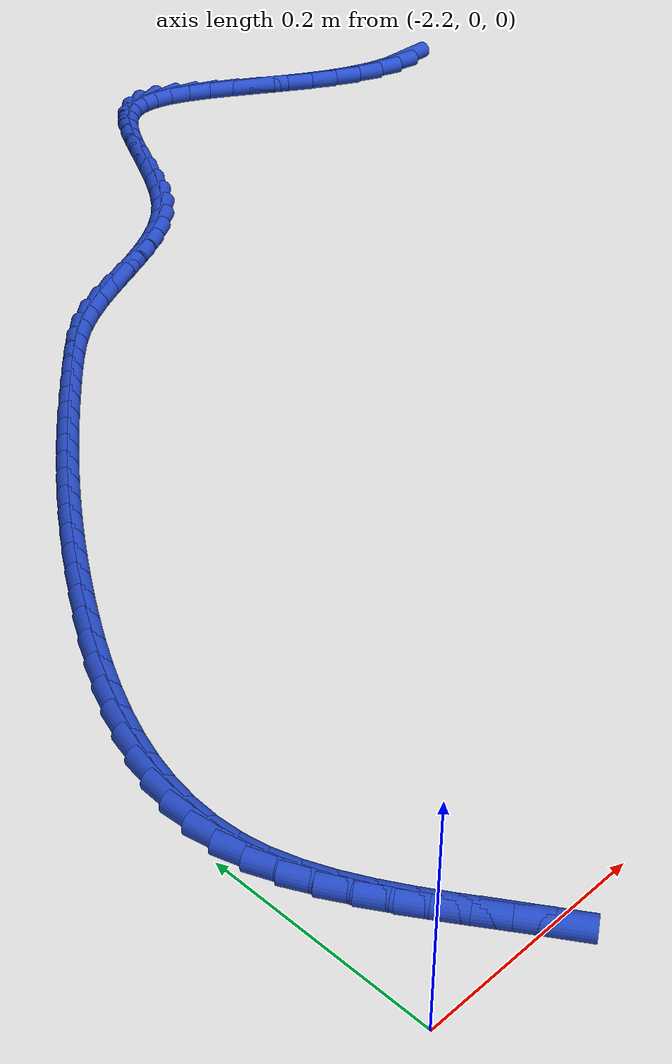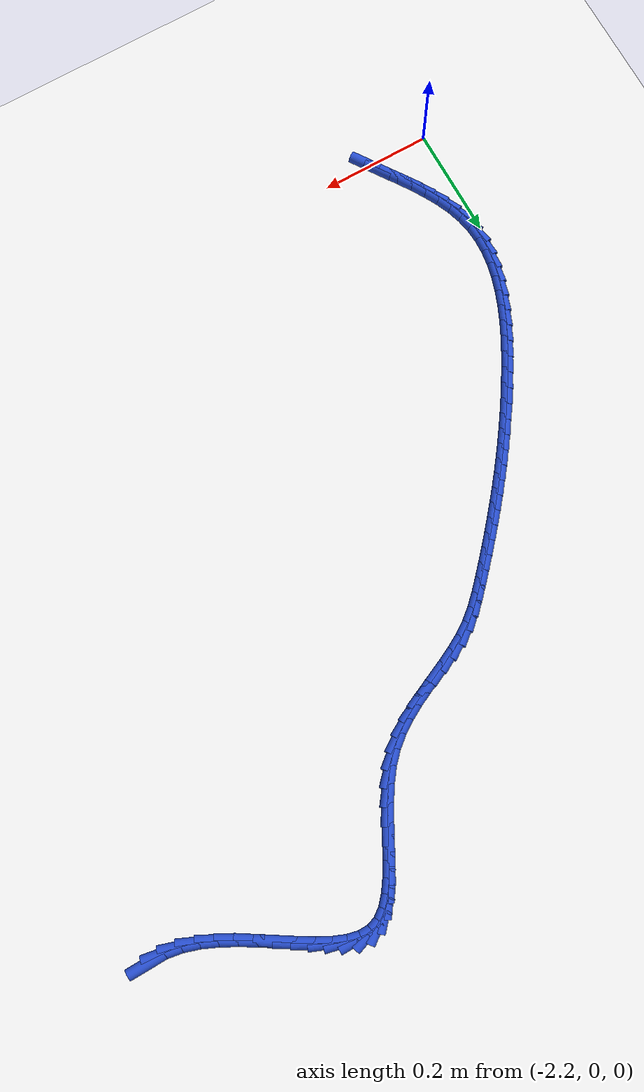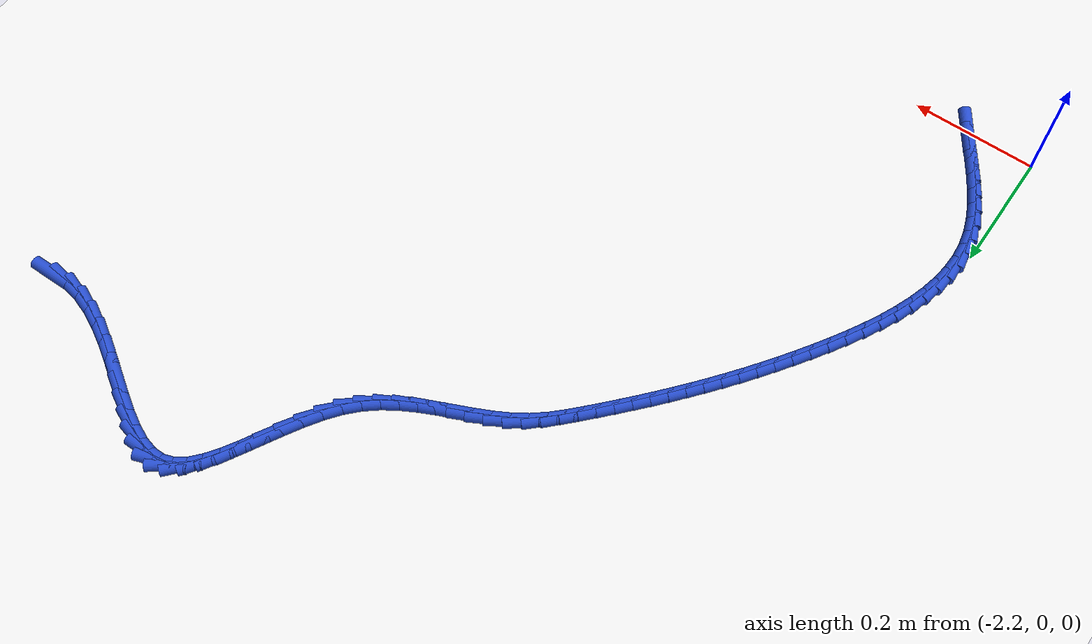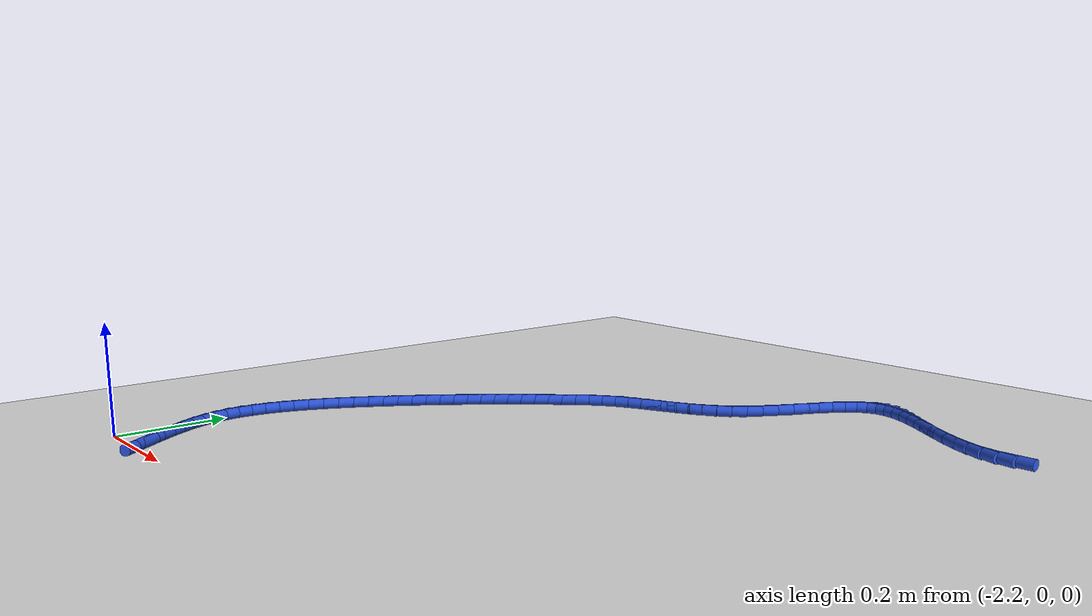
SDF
<sdf version="1.6">
 <world name="default">
  <model name="ground_plane">
   <static>1</static>
   <link name="link">
    <collision name="collision">
     <geometry><plane><normal>0 0 1</normal><size>100 100</size></plane></geometry>
     <surface><friction><ode><mu>100</mu><mu2>50</mu2></ode></friction></surface>
    </collision>
    <visual name="visual">
     <cast_shadows>0</cast_shadows>
     <geometry><plane><normal>0 0 1</normal><size>100 100</size></plane></geometry>
     <material>
      <script><uri>file://media/materials/scripts/gazebo.material</uri><name>Gazebo/WhiteGlow</name></script>
     </material>
    </visual>
   </link>
  </model>
  <model name="line">
   <link name="link_66">
    <pose>-1.1069341901536212 1.022419946528383 0.01 0 1.57 0.02020815254820684</pose>
    <collision name="collision">
     <geometry><cylinder><radius>0.01</radius><length>0.08</length></cylinder></geometry>
    </collision>
    <visual name="visual">
     <material>
      <script><name>Gazebo/Blue</name><uri>file://media/materials/scripts/gazebo.material</uri></script>
     </material>
     <geometry><cylinder><radius>0.01</radius><length>0.08</length></cylinder></geometry>
    </visual>
   </link>
   <link name="link_67">
    <pose>-1.1344769636904963 1.0218632821821856 0.01 0 1.57 -0.16537096222450542</pose>
    <collision name="collision">
     <geometry><cylinder><radius>0.01</radius><length>0.08</length></cylinder></geometry>
    </collision>
    <visual name="visual">
     <material>
      <script><name>Gazebo/Blue</name><uri>file://media/materials/scripts/gazebo.material</uri></script>
     </material>
     <geometry><cylinder><radius>0.01</radius><length>0.08</length></cylinder></geometry>
    </visual>
   </link>
   <link name="link_68">
    <pose>-1.1621824530618348 1.0264871935578272 0.01 0 1.57 -0.3096220203757581</pose>
    <collision name="collision">
     <geometry><cylinder><radius>0.01</radius><length>0.08</length></cylinder></geometry>
    </collision>
    <visual name="visual">
     <material>
      <script><name>Gazebo/Blue</name><uri>file://media/materials/scripts/gazebo.material</uri></script>
     </material>
     <geometry><cylinder><radius>0.01</radius><length>0.08</length></cylinder></geometry>
    </visual>
   </link>
   <link name="link_69">
    <pose>-1.189899701421498 1.0353542404190064 0.01 0 1.57 -0.4156727398980598</pose>
    <collision name="collision">
     <geometry><cylinder><radius>0.01</radius><length>0.08</length></cylinder></geometry>
    </collision>
    <visual name="visual">
     <material>
      <script><name>Gazebo/Blue</name><uri>file://media/materials/scripts/gazebo.material</uri></script>
     </material>
     <geometry><cylinder><radius>0.01</radius><length>0.08</length></cylinder></geometry>
    </visual>
   </link>
   <link name="link_70">
    <pose>-1.2174777518388087 1.0475269792929782 0.01 0 1.57 -0.48959899951528796</pose>
    <collision name="collision">
     <geometry><cylinder><radius>0.01</radius><length>0.08</length></cylinder></geometry>
    </collision>
    <visual name="visual">
     <material>
      <script><name>Gazebo/Blue</name><uri>file://media/materials/scripts/gazebo.material</uri></script>
     </material>
     <geometry><cylinder><radius>0.01</radius><length>0.08</length></cylinder></geometry>
    </visual>
   </link>
   <link name="link_71">
    <pose>-1.2447656473830915 1.062067966706999 0.01 0 1.57 -0.5366786917627356</pose>
    <collision name="collision">
     <geometry><cylinder><radius>0.01</radius><length>0.08</length></cylinder></geometry>
    </collision>
    <visual name="visual">
     <material>
      <script><name>Gazebo/Blue</name><uri>file://media/materials/scripts/gazebo.material</uri></script>
     </material>
     <geometry><cylinder><radius>0.01</radius><length>0.08</length></cylinder></geometry>
    </visual>
   </link>
   <link name="link_72">
    <pose>-1.2716124311236696 1.078039759188326 0.01 0 1.57 -0.5601304819937649</pose>
    <collision name="collision">
     <geometry><cylinder><radius>0.01</radius><length>0.08</length></cylinder></geometry>
    </collision>
    <visual name="visual">
     <material>
      <script><name>Gazebo/Blue</name><uri>file://media/materials/scripts/gazebo.material</uri></script>
     </material>
     <geometry><cylinder><radius>0.01</radius><length>0.08</length></cylinder></geometry>
    </visual>
   </link>
   <link name="link_73">
    <pose>-1.2978671461298668 1.0945049132642144 0.01 0 1.57 -0.5607461568363896</pose>
    <collision name="collision">
     <geometry><cylinder><radius>0.01</radius><length>0.08</length></cylinder></geometry>
    </collision>
    <visual name="visual">
     <material>
      <script><name>Gazebo/Blue</name><uri>file://media/materials/scripts/gazebo.material</uri></script>
     </material>
     <geometry><cylinder><radius>0.01</radius><length>0.08</length></cylinder></geometry>
    </visual>
   </link>
   <link name="link_74">
    <pose>-1.323378835471006 1.110525985461921 0.01 0 1.57 -0.5364952219221905</pose>
    <collision name="collision">
     <geometry><cylinder><radius>0.01</radius><length>0.08</length></cylinder></geometry>
    </collision>
    <visual name="visual">
     <material>
      <script><name>Gazebo/Blue</name><uri>file://media/materials/scripts/gazebo.material</uri></script>
     </material>
     <geometry><cylinder><radius>0.01</radius><length>0.08</length></cylinder></geometry>
    </visual>
   </link>
   <link name="link_75">
    <pose>-1.347996542216412 1.1251655323087018 0.01 0 1.57 -0.4816120235274585</pose>
    <collision name="collision">
     <geometry><cylinder><radius>0.01</radius><length>0.08</length></cylinder></geometry>
    </collision>
    <visual name="visual">
     <material>
      <script><name>Gazebo/Blue</name><uri>file://media/materials/scripts/gazebo.material</uri></script>
     </material>
     <geometry><cylinder><radius>0.01</radius><length>0.08</length></cylinder></geometry>
    </visual>
   </link>
   <link name="link_76">
    <pose>-1.3715693094354071 1.137486110331813 0.01 0 1.57 -0.3848681323692567</pose>
    <collision name="collision">
     <geometry><cylinder><radius>0.01</radius><length>0.08</length></cylinder></geometry>
    </collision>
    <visual name="visual">
     <material>
      <script><name>Gazebo/Blue</name><uri>file://media/materials/scripts/gazebo.material</uri></script>
     </material>
     <geometry><cylinder><radius>0.01</radius><length>0.08</length></cylinder></geometry>
    </visual>
   </link>
   <link name="link_77">
    <pose>-1.3939461801973159 1.1465502760585111 0.01 0 1.57 -0.2275765438234378</pose>
    <collision name="collision">
     <geometry><cylinder><radius>0.01</radius><length>0.08</length></cylinder></geometry>
    </collision>
    <visual name="visual">
     <material>
      <script><name>Gazebo/Blue</name><uri>file://media/materials/scripts/gazebo.material</uri></script>
     </material>
     <geometry><cylinder><radius>0.01</radius><length>0.08</length></cylinder></geometry>
    </visual>
   </link>
   <link name="link_78">
    <pose>-1.4149761975714608 1.151420586016052 0.01 0 1.57 0.013361201459706887</pose>
    <collision name="collision">
     <geometry><cylinder><radius>0.01</radius><length>0.08</length></cylinder></geometry>
    </collision>
    <visual name="visual">
     <material>
      <script><name>Gazebo/Blue</name><uri>file://media/materials/scripts/gazebo.material</uri></script>
     </material>
     <geometry><cylinder><radius>0.01</radius><length>0.08</length></cylinder></geometry>
    </visual>
   </link>
   <link name="link_79">
    <pose>-1.434508404627167 1.1511595967316925 0.01 0 1.57 0.3373347254665268</pose>
    <collision name="collision">
     <geometry><cylinder><radius>0.01</radius><length>0.08</length></cylinder></geometry>
    </collision>
    <visual name="visual">
     <material>
      <script><name>Gazebo/Blue</name><uri>file://media/materials/scripts/gazebo.material</uri></script>
     </material>
     <geometry><cylinder><radius>0.01</radius><length>0.08</length></cylinder></geometry>
    </visual>
   </link>
   <link name="link_80">
    <pose>-1.4524058884178155 1.144882216876278 0.01 0 1.57 0.6396455511615639</pose>
    <collision name="collision">
     <geometry><cylinder><radius>0.01</radius><length>0.08</length></cylinder></geometry>
    </collision>
    <visual name="visual">
     <material>
      <script><name>Gazebo/Blue</name><uri>file://media/materials/scripts/gazebo.material</uri></script>
     </material>
     <geometry><cylinder><radius>0.01</radius><length>0.08</length></cylinder></geometry>
    </visual>
   </link>
   <link name="link_81">
    <pose>-1.4687959169887639 1.1326881498318513 0.01 0 1.57 0.8436905700539282</pose>
    <collision name="collision">
     <geometry><cylinder><radius>0.01</radius><length>0.08</length></cylinder></geometry>
    </collision>
    <visual name="visual">
     <material>
      <script><name>Gazebo/Blue</name><uri>file://media/materials/scripts/gazebo.material</uri></script>
     </material>
     <geometry><cylinder><radius>0.01</radius><length>0.08</length></cylinder></geometry>
    </visual>
   </link>
   <link name="link_82">
    <pose>-1.484040879164767 1.1155535651422157 0.01 0 1.57 0.968960059297003</pose>
    <collision name="collision">
     <geometry><cylinder><radius>0.01</radius><length>0.08</length></cylinder></geometry>
    </collision>
    <visual name="visual">
     <material>
      <script><name>Gazebo/Blue</name><uri>file://media/materials/scripts/gazebo.material</uri></script>
     </material>
     <geometry><cylinder><radius>0.01</radius><length>0.08</length></cylinder></geometry>
    </visual>
   </link>
   <link name="link_83">
    <pose>-1.4985113709580045 1.0944852265082632 0.01 0 1.57 1.0405684530799015</pose>
    <collision name="collision">
     <geometry><cylinder><radius>0.01</radius><length>0.08</length></cylinder></geometry>
    </collision>
    <visual name="visual">
     <material>
      <script><name>Gazebo/Blue</name><uri>file://media/materials/scripts/gazebo.material</uri></script>
     </material>
     <geometry><cylinder><radius>0.01</radius><length>0.08</length></cylinder></geometry>
    </visual>
   </link>
   <link name="link_84">
    <pose>-1.5125779883806556 1.0704898976308863 0.01 0 1.57 1.0745004779913812</pose>
    <collision name="collision">
     <geometry><cylinder><radius>0.01</radius><length>0.08</length></cylinder></geometry>
    </collision>
    <visual name="visual">
     <material>
      <script><name>Gazebo/Blue</name><uri>file://media/materials/scripts/gazebo.material</uri></script>
     </material>
     <geometry><cylinder><radius>0.01</radius><length>0.08</length></cylinder></geometry>
    </visual>
   </link>
   <link name="link_85">
    <pose>-1.5266113274448994 1.044574342210978 0.01 0 1.57 1.0790459917711814</pose>
    <collision name="collision">
     <geometry><cylinder><radius>0.01</radius><length>0.08</length></cylinder></geometry>
    </collision>
    <visual name="visual">
     <material>
      <script><name>Gazebo/Blue</name><uri>file://media/materials/scripts/gazebo.material</uri></script>
     </material>
     <geometry><cylinder><radius>0.01</radius><length>0.08</length></cylinder></geometry>
    </visual>
   </link>
   <link name="link_86">
    <pose>-1.5409819841629153 1.01774532394943 0.01 0 1.57 1.057278750456787</pose>
    <collision name="collision">
     <geometry><cylinder><radius>0.01</radius><length>0.08</length></cylinder></geometry>
    </collision>
    <visual name="visual">
     <material>
      <script><name>Gazebo/Blue</name><uri>file://media/materials/scripts/gazebo.material</uri></script>
     </material>
     <geometry><cylinder><radius>0.01</radius><length>0.08</length></cylinder></geometry>
    </visual>
   </link>
   <link name="link_87">
    <pose>-1.5560605545468824 0.991009606547135 0.01 0 1.57 1.0084247764468381</pose>
    <collision name="collision">
     <geometry><cylinder><radius>0.01</radius><length>0.08</length></cylinder></geometry>
    </collision>
    <visual name="visual">
     <material>
      <script><name>Gazebo/Blue</name><uri>file://media/materials/scripts/gazebo.material</uri></script>
     </material>
     <geometry><cylinder><radius>0.01</radius><length>0.08</length></cylinder></geometry>
    </visual>
   </link>
   <link name="link_88">
    <pose>-1.5722176346089802 0.9653739537049851 0.01 0 1.57 0.9283959219050918</pose>
    <collision name="collision">
     <geometry><cylinder><radius>0.01</radius><length>0.08</length></cylinder></geometry>
    </collision>
    <visual name="visual">
     <material>
      <script><name>Gazebo/Blue</name><uri>file://media/materials/scripts/gazebo.material</uri></script>
     </material>
     <geometry><cylinder><radius>0.01</radius><length>0.08</length></cylinder></geometry>
    </visual>
   </link>
   <link name="link_89">
    <pose>-1.5898238203613877 0.9418451291238729 0.01 0 1.57 0.8127281199729387</pose>
    <collision name="collision">
     <geometry><cylinder><radius>0.01</radius><length>0.08</length></cylinder></geometry>
    </collision>
    <visual name="visual">
     <material>
      <script><name>Gazebo/Blue</name><uri>file://media/materials/scripts/gazebo.material</uri></script>
     </material>
     <geometry><cylinder><radius>0.01</radius><length>0.08</length></cylinder></geometry>
    </visual>
   </link>
   <link name="link_90">
    <pose>-1.6092182633115564 0.9213605220300409 0.01 0 1.57 0.6894884175083106</pose>
    <collision name="collision">
     <geometry><cylinder><radius>0.01</radius><length>0.08</length></cylinder></geometry>
    </collision>
    <visual name="visual">
     <material>
      <script><name>Gazebo/Blue</name><uri>file://media/materials/scripts/gazebo.material</uri></script>
     </material>
     <geometry><cylinder><radius>0.01</radius><length>0.08</length></cylinder></geometry>
    </visual>
   </link>
   <link name="link_91">
    <pose>-1.6303305570298372 0.9039539339808851 0.01 0 1.57 0.5863195885126483</pose>
    <collision name="collision">
     <geometry><cylinder><radius>0.01</radius><length>0.08</length></cylinder></geometry>
    </collision>
    <visual name="visual">
     <material>
      <script><name>Gazebo/Blue</name><uri>file://media/materials/scripts/gazebo.material</uri></script>
     </material>
     <geometry><cylinder><radius>0.01</radius><length>0.08</length></cylinder></geometry>
    </visual>
   </link>
   <link name="link_92">
    <pose>-1.652803541278895 0.8890265156164354 0.01 0 1.57 0.5077783127990707</pose>
    <collision name="collision">
     <geometry><cylinder><radius>0.01</radius><length>0.08</length></cylinder></geometry>
    </collision>
    <visual name="visual">
     <material>
      <script><name>Gazebo/Blue</name><uri>file://media/materials/scripts/gazebo.material</uri></script>
     </material>
     <geometry><cylinder><radius>0.01</radius><length>0.08</length></cylinder></geometry>
    </visual>
   </link>
   <link name="link_93">
    <pose>-1.6762741546136888 0.8759663980304495 0.01 0 1.57 0.45538637639546325</pose>
    <collision name="collision">
     <geometry><cylinder><radius>0.01</radius><length>0.08</length></cylinder></geometry>
    </collision>
    <visual name="visual">
     <material>
      <script><name>Gazebo/Blue</name><uri>file://media/materials/scripts/gazebo.material</uri></script>
     </material>
     <geometry><cylinder><radius>0.01</radius><length>0.08</length></cylinder></geometry>
    </visual>
   </link>
   <link name="link_94">
    <pose>-1.7003793355891779 0.8641617123166856 0.01 0 1.57 0.4293714795729647</pose>
    <collision name="collision">
     <geometry><cylinder><radius>0.01</radius><length>0.08</length></cylinder></geometry>
    </collision>
    <visual name="visual">
     <material>
      <script><name>Gazebo/Blue</name><uri>file://media/materials/scripts/gazebo.material</uri></script>
     </material>
     <geometry><cylinder><radius>0.01</radius><length>0.08</length></cylinder></geometry>
    </visual>
   </link>
   <link name="link_95">
    <pose>-1.7247560227603214 0.8530005895689011 0.01 0 1.57 0.42971951141970294</pose>
    <collision name="collision">
     <geometry><cylinder><radius>0.01</radius><length>0.08</length></cylinder></geometry>
    </collision>
    <visual name="visual">
     <material>
      <script><name>Gazebo/Blue</name><uri>file://media/materials/scripts/gazebo.material</uri></script>
     </material>
     <geometry><cylinder><radius>0.01</radius><length>0.08</length></cylinder></geometry>
    </visual>
   </link>
   <link name="link_96">
    <pose>-1.749041154682079 0.841871160880854 0.01 0 1.57 0.45671991511231946</pose>
    <collision name="collision">
     <geometry><cylinder><radius>0.01</radius><length>0.08</length></cylinder></geometry>
    </collision>
    <visual name="visual">
     <material>
      <script><name>Gazebo/Blue</name><uri>file://media/materials/scripts/gazebo.material</uri></script>
     </material>
     <geometry><cylinder><radius>0.01</radius><length>0.08</length></cylinder></geometry>
    </visual>
   </link>
   <link name="link_97">
    <pose>-1.77287166990941 0.8301615573463018 0.01 0 1.57 0.5109664829048829</pose>
    <collision name="collision">
     <geometry><cylinder><radius>0.01</radius><length>0.08</length></cylinder></geometry>
    </collision>
    <visual name="visual">
     <material>
      <script><name>Gazebo/Blue</name><uri>file://media/materials/scripts/gazebo.material</uri></script>
     </material>
     <geometry><cylinder><radius>0.01</radius><length>0.08</length></cylinder></geometry>
    </visual>
   </link>
   <link name="link_98">
    <pose>-1.7958845069972738 0.8172599100590027 0.01 0 1.57 0.5927702122343368</pose>
    <collision name="collision">
     <geometry><cylinder><radius>0.01</radius><length>0.08</length></cylinder></geometry>
    </collision>
    <visual name="visual">
     <material>
      <script><name>Gazebo/Blue</name><uri>file://media/materials/scripts/gazebo.material</uri></script>
     </material>
     <geometry><cylinder><radius>0.01</radius><length>0.08</length></cylinder></geometry>
    </visual>
   </link>
   <link name="link_99">
    <pose>-1.8177166045006294 0.8025543501127137 0.01 0 1.57 0.6932564591627873</pose>
    <collision name="collision">
     <geometry><cylinder><radius>0.01</radius><length>0.08</length></cylinder></geometry>
    </collision>
    <visual name="visual">
     <material>
      <script><name>Gazebo/Blue</name><uri>file://media/materials/scripts/gazebo.material</uri></script>
     </material>
     <geometry><cylinder><radius>0.01</radius><length>0.08</length></cylinder></geometry>
    </visual>
   </link>
   <link name="link_100">
    <pose>-1.838104135299061 0.7856158681844003 0.01 0 1.57 0.7708568467816722</pose>
    <collision name="collision">
     <geometry><cylinder><radius>0.01</radius><length>0.08</length></cylinder></geometry>
    </collision>
    <visual name="visual">
     <material>
      <script><name>Gazebo/Blue</name><uri>file://media/materials/scripts/gazebo.material</uri></script>
     </material>
     <geometry><cylinder><radius>0.01</radius><length>0.08</length></cylinder></geometry>
    </visual>
   </link>
   <link name="link_101">
    <pose>-1.857300950495965 0.7669693831870403 0.01 0 1.57 0.8141482948702015</pose>
    <collision name="collision">
     <geometry><cylinder><radius>0.01</radius><length>0.08</length></cylinder></geometry>
    </collision>
    <visual name="visual">
     <material>
      <script><name>Gazebo/Blue</name><uri>file://media/materials/scripts/gazebo.material</uri></script>
     </material>
     <geometry><cylinder><radius>0.01</radius><length>0.08</length></cylinder></geometry>
    </visual>
   </link>
   <link name="link_102">
    <pose>-1.875729161939736 0.7474498689447258 0.01 0 1.57 0.8291998352946112</pose>
    <collision name="collision">
     <geometry><cylinder><radius>0.01</radius><length>0.08</length></cylinder></geometry>
    </collision>
    <visual name="visual">
     <material>
      <script><name>Gazebo/Blue</name><uri>file://media/materials/scripts/gazebo.material</uri></script>
     </material>
     <geometry><cylinder><radius>0.01</radius><length>0.08</length></cylinder></geometry>
    </visual>
   </link>
   <link name="link_103">
    <pose>-1.8937550300806105 0.7277714322122316 0.01 0 1.57 0.8385880417410699</pose>
    <collision name="collision">
     <geometry><cylinder><radius>0.01</radius><length>0.08</length></cylinder></geometry>
    </collision>
    <visual name="visual">
     <material>
      <script><name>Gazebo/Blue</name><uri>file://media/materials/scripts/gazebo.material</uri></script>
     </material>
     <geometry><cylinder><radius>0.01</radius><length>0.08</length></cylinder></geometry>
    </visual>
   </link>
   <link name="link_104">
    <pose>-1.9114732042352398 0.708060530458476 0.01 0 1.57 0.8490502206320485</pose>
    <collision name="collision">
     <geometry><cylinder><radius>0.01</radius><length>0.08</length></cylinder></geometry>
    </collision>
    <visual name="visual">
     <material>
      <script><name>Gazebo/Blue</name><uri>file://media/materials/scripts/gazebo.material</uri></script>
     </material>
     <geometry><cylinder><radius>0.01</radius><length>0.08</length></cylinder></geometry>
    </visual>
   </link>
   <link name="link_105">
    <pose>-1.9288960166813345 0.6882655226020292 0.01 0 1.57 0.8605460458545253</pose>
    <collision name="collision">
     <geometry><cylinder><radius>0.01</radius><length>0.08</length></cylinder></geometry>
    </collision>
    <visual name="visual">
     <material>
      <script><name>Gazebo/Blue</name><uri>file://media/materials/scripts/gazebo.material</uri></script>
     </material>
     <geometry><cylinder><radius>0.01</radius><length>0.08</length></cylinder></geometry>
    </visual>
   </link>
   <link name="link_106">
    <pose>-1.9460357814175546 0.668334728013486 0.01 0 1.57 0.8730204493993159</pose>
    <collision name="collision">
     <geometry><cylinder><radius>0.01</radius><length>0.08</length></cylinder></geometry>
    </collision>
    <visual name="visual">
     <material>
      <script><name>Gazebo/Blue</name><uri>file://media/materials/scripts/gazebo.material</uri></script>
     </material>
     <geometry><cylinder><radius>0.01</radius><length>0.08</length></cylinder></geometry>
    </visual>
   </link>
   <link name="link_107">
    <pose>-1.9629048124425594 0.6482164660634414 0.01 0 1.57 0.8864056711881175</pose>
    <collision name="collision">
     <geometry><cylinder><radius>0.01</radius><length>0.08</length></cylinder></geometry>
    </collision>
    <visual name="visual">
     <material>
      <script><name>Gazebo/Blue</name><uri>file://media/materials/scripts/gazebo.material</uri></script>
     </material>
     <geometry><cylinder><radius>0.01</radius><length>0.08</length></cylinder></geometry>
    </visual>
   </link>
   <link name="link_108">
    <pose>-1.9795154237550097 0.6278590561224902 0.01 0 1.57 0.9006222161085535</pose>
    <collision name="collision">
     <geometry><cylinder><radius>0.01</radius><length>0.08</length></cylinder></geometry>
    </collision>
    <visual name="visual">
     <material>
      <script><name>Gazebo/Blue</name><uri>file://media/materials/scripts/gazebo.material</uri></script>
     </material>
     <geometry><cylinder><radius>0.01</radius><length>0.08</length></cylinder></geometry>
    </visual>
   </link>
   <link name="link_109">
    <pose>-1.9958799293535647 0.6072108175612267 0.01 0 1.57 0.9155802120947873</pose>
    <collision name="collision">
     <geometry><cylinder><radius>0.01</radius><length>0.08</length></cylinder></geometry>
    </collision>
    <visual name="visual">
     <material>
      <script><name>Gazebo/Blue</name><uri>file://media/materials/scripts/gazebo.material</uri></script>
     </material>
     <geometry><cylinder><radius>0.01</radius><length>0.08</length></cylinder></geometry>
    </visual>
   </link>
   <link name="link_110">
    <pose>-2.0120106432368847 0.5862200697502464 0.01 0 1.57 0.9311811313336552</pose>
    <collision name="collision">
     <geometry><cylinder><radius>0.01</radius><length>0.08</length></cylinder></geometry>
    </collision>
    <visual name="visual">
     <material>
      <script><name>Gazebo/Blue</name><uri>file://media/materials/scripts/gazebo.material</uri></script>
     </material>
     <geometry><cylinder><radius>0.01</radius><length>0.08</length></cylinder></geometry>
    </visual>
   </link>
   <link name="link_111">
    <pose>-2.0279198794036293 0.5648351320601434 0.01 0 1.57 0.9473198115787709</pose>
    <collision name="collision">
     <geometry><cylinder><radius>0.01</radius><length>0.08</length></cylinder></geometry>
    </collision>
    <visual name="visual">
     <material>
      <script><name>Gazebo/Blue</name><uri>file://media/materials/scripts/gazebo.material</uri></script>
     </material>
     <geometry><cylinder><radius>0.01</radius><length>0.08</length></cylinder></geometry>
    </visual>
   </link>
   <link name="link_112">
    <pose>-2.043619951852459 0.5430043238615129 0.01 0 1.57 0.9638866928238744</pose>
    <collision name="collision">
     <geometry><cylinder><radius>0.01</radius><length>0.08</length></cylinder></geometry>
    </collision>
    <visual name="visual">
     <material>
      <script><name>Gazebo/Blue</name><uri>file://media/materials/scripts/gazebo.material</uri></script>
     </material>
     <geometry><cylinder><radius>0.01</radius><length>0.08</length></cylinder></geometry>
    </visual>
   </link>
   <link name="link_113">
    <pose>-2.0591231745820338 0.5206759645249499 0.01 0 1.57 0.9807701688319223</pose>
    <collision name="collision">
     <geometry><cylinder><radius>0.01</radius><length>0.08</length></cylinder></geometry>
    </collision>
    <visual name="visual">
     <material>
      <script><name>Gazebo/Blue</name><uri>file://media/materials/scripts/gazebo.material</uri></script>
     </material>
     <geometry><cylinder><radius>0.01</radius><length>0.08</length></cylinder></geometry>
    </visual>
   </link>
   <link name="link_114">
    <pose>-2.074441861591012 0.49779837342104816 0.01 0 1.57 0.9978589452383153</pose>
    <collision name="collision">
     <geometry><cylinder><radius>0.01</radius><length>0.08</length></cylinder></geometry>
    </collision>
    <visual name="visual">
     <material>
      <script><name>Gazebo/Blue</name><uri>file://media/materials/scripts/gazebo.material</uri></script>
     </material>
     <geometry><cylinder><radius>0.01</radius><length>0.08</length></cylinder></geometry>
    </visual>
   </link>
   <link name="link_115">
    <pose>-2.089588326878056 0.4743198699204034 0.01 0 1.57 1.0159715610183027</pose>
    <collision name="collision">
     <geometry><cylinder><radius>0.01</radius><length>0.08</length></cylinder></geometry>
    </collision>
    <visual name="visual">
     <material>
      <script><name>Gazebo/Blue</name><uri>file://media/materials/scripts/gazebo.material</uri></script>
     </material>
     <geometry><cylinder><radius>0.01</radius><length>0.08</length></cylinder></geometry>
    </visual>
   </link>
   <link name="link_116">
    <pose>-2.1045289483179275 0.45021289176686535 0.01 0 1.57 1.0389910981631794</pose>
    <collision name="collision">
     <geometry><cylinder><radius>0.01</radius><length>0.08</length></cylinder></geometry>
    </collision>
    <visual name="visual">
     <material>
      <script><name>Gazebo/Blue</name><uri>file://media/materials/scripts/gazebo.material</uri></script>
     </material>
     <geometry><cylinder><radius>0.01</radius><length>0.08</length></cylinder></geometry>
    </visual>
   </link>
   <link name="link_117">
    <pose>-2.119039144917194 0.42555013804261776 0.01 0 1.57 1.0682680491758105</pose>
    <collision name="collision">
     <geometry><cylinder><radius>0.01</radius><length>0.08</length></cylinder></geometry>
    </collision>
    <visual name="visual">
     <material>
      <script><name>Gazebo/Blue</name><uri>file://media/materials/scripts/gazebo.material</uri></script>
     </material>
     <geometry><cylinder><radius>0.01</radius><length>0.08</length></cylinder></geometry>
    </visual>
   </link>
   <link name="link_118">
    <pose>-2.1328447221180045 0.4004303570121348 0.01 0 1.57 1.104397731692232</pose>
    <collision name="collision">
     <geometry><cylinder><radius>0.01</radius><length>0.08</length></cylinder></geometry>
    </collision>
    <visual name="visual">
     <material>
      <script><name>Gazebo/Blue</name><uri>file://media/materials/scripts/gazebo.material</uri></script>
     </material>
     <geometry><cylinder><radius>0.01</radius><length>0.08</length></cylinder></geometry>
    </visual>
   </link>
   <link name="link_119">
    <pose>-2.145671485261518 0.3749522969929161 0.01 0 1.57 1.1482061323595734</pose>
    <collision name="collision">
     <geometry><cylinder><radius>0.01</radius><length>0.08</length></cylinder></geometry>
    </collision>
    <visual name="visual">
     <material>
      <script><name>Gazebo/Blue</name><uri>file://media/materials/scripts/gazebo.material</uri></script>
     </material>
     <geometry><cylinder><radius>0.01</radius><length>0.08</length></cylinder></geometry>
    </visual>
   </link>
   <link name="link_120">
    <pose>-2.1572452396888924 0.3492147063024603 0.01 0 1.57 1.2007451034804997</pose>
    <collision name="collision">
     <geometry><cylinder><radius>0.01</radius><length>0.08</length></cylinder></geometry>
    </collision>
    <visual name="visual">
     <material>
      <script><name>Gazebo/Blue</name><uri>file://media/materials/scripts/gazebo.material</uri></script>
     </material>
     <geometry><cylinder><radius>0.01</radius><length>0.08</length></cylinder></geometry>
    </visual>
   </link>
   <link name="link_121">
    <pose>-2.167291790741288 0.323316333258267 0.01 0 1.57 1.26326749540918</pose>
    <collision name="collision">
     <geometry><cylinder><radius>0.01</radius><length>0.08</length></cylinder></geometry>
    </collision>
    <visual name="visual">
     <material>
      <script><name>Gazebo/Blue</name><uri>file://media/materials/scripts/gazebo.material</uri></script>
     </material>
     <geometry><cylinder><radius>0.01</radius><length>0.08</length></cylinder></geometry>
    </visual>
   </link>
   <link name="link_122">
    <pose>-2.1755369437598624 0.29735592617783485 0.01 0 1.57 1.3371534460005192</pose>
    <collision name="collision">
     <geometry><cylinder><radius>0.01</radius><length>0.08</length></cylinder></geometry>
    </collision>
    <visual name="visual">
     <material>
      <script><name>Gazebo/Blue</name><uri>file://media/materials/scripts/gazebo.material</uri></script>
     </material>
     <geometry><cylinder><radius>0.01</radius><length>0.08</length></cylinder></geometry>
    </visual>
   </link>
   <link name="link_123">
    <pose>-2.181706504085774 0.27143223337866357 0.01 0 1.57 1.4237447442121978</pose>
    <collision name="collision">
     <geometry><cylinder><radius>0.01</radius><length>0.08</length></cylinder></geometry>
    </collision>
    <visual name="visual">
     <material>
      <script><name>Gazebo/Blue</name><uri>file://media/materials/scripts/gazebo.material</uri></script>
     </material>
     <geometry><cylinder><radius>0.01</radius><length>0.08</length></cylinder></geometry>
    </visual>
   </link>
   <link name="link_124">
    <pose>-2.185526277060182 0.24564400317825139 0.01 0 1.57 1.5240358045897808</pose>
    <collision name="collision">
     <geometry><cylinder><radius>0.01</radius><length>0.08</length></cylinder></geometry>
    </collision>
    <visual name="visual">
     <material>
      <script><name>Gazebo/Blue</name><uri>file://media/materials/scripts/gazebo.material</uri></script>
     </material>
     <geometry><cylinder><radius>0.01</radius><length>0.08</length></cylinder></geometry>
    </visual>
   </link>
   <link name="link_125">
    <pose>-2.186722068024245 0.22008998389409792 0.01 0 1.57 -1.5033999779929914</pose>
    <collision name="collision">
     <geometry><cylinder><radius>0.01</radius><length>0.08</length></cylinder></geometry>
    </collision>
    <visual name="visual">
     <material>
      <script><name>Gazebo/Blue</name><uri>file://media/materials/scripts/gazebo.material</uri></script>
     </material>
     <geometry><cylinder><radius>0.01</radius><length>0.08</length></cylinder></geometry>
    </visual>
   </link>
   <link name="link_126">
    <pose>-2.1850196823191226 0.19486892384370214 0.01 0 1.57 -1.3776596294437444</pose>
    <collision name="collision">
     <geometry><cylinder><radius>0.01</radius><length>0.08</length></cylinder></geometry>
    </collision>
    <visual name="visual">
     <material>
      <script><name>Gazebo/Blue</name><uri>file://media/materials/scripts/gazebo.material</uri></script>
     </material>
     <geometry><cylinder><radius>0.01</radius><length>0.08</length></cylinder></geometry>
    </visual>
   </link>
   <link name="link_127">
    <pose>-2.1801703659482787 0.17007368861335237 0.01 0 1.57 -1.2592229416889007</pose>
    <collision name="collision">
     <geometry><cylinder><radius>0.01</radius><length>0.08</length></cylinder></geometry>
    </collision>
    <visual name="visual">
     <material>
      <script><name>Gazebo/Blue</name><uri>file://media/materials/scripts/gazebo.material</uri></script>
     </material>
     <geometry><cylinder><radius>0.01</radius><length>0.08</length></cylinder></geometry>
    </visual>
   </link>
   <link name="link_128">
    <pose>-2.172322228811137 0.14570537559560146 0.01 0 1.57 -1.1626162737569259</pose>
    <collision name="collision">
     <geometry><cylinder><radius>0.01</radius><length>0.08</length></cylinder></geometry>
    </collision>
    <visual name="visual">
     <material>
      <script><name>Gazebo/Blue</name><uri>file://media/materials/scripts/gazebo.material</uri></script>
     </material>
     <geometry><cylinder><radius>0.01</radius><length>0.08</length></cylinder></geometry>
    </visual>
   </link>
   <link name="link_129">
    <pose>-2.1619373887845925 0.1216924730462078 0.01 0 1.57 -1.08761125967233</pose>
    <collision name="collision">
     <geometry><cylinder><radius>0.01</radius><length>0.08</length></cylinder></geometry>
    </collision>
    <visual name="visual">
     <material>
      <script><name>Gazebo/Blue</name><uri>file://media/materials/scripts/gazebo.material</uri></script>
     </material>
     <geometry><cylinder><radius>0.01</radius><length>0.08</length></cylinder></geometry>
    </visual>
   </link>
   <link name="link_130">
    <pose>-2.1494865478369203 0.09796148429216864 0.01 0 1.57 -1.0324864490388306</pose>
    <collision name="collision">
     <geometry><cylinder><radius>0.01</radius><length>0.08</length></cylinder></geometry>
    </collision>
    <visual name="visual">
     <material>
      <script><name>Gazebo/Blue</name><uri>file://media/materials/scripts/gazebo.material</uri></script>
     </material>
     <geometry><cylinder><radius>0.01</radius><length>0.08</length></cylinder></geometry>
    </visual>
   </link>
   <link name="link_131">
    <pose>-2.1354404079363998 0.07443891266048121 0.01 0 1.57 -0.9953605847352807</pose>
    <collision name="collision">
     <geometry><cylinder><radius>0.01</radius><length>0.08</length></cylinder></geometry>
    </collision>
    <visual name="visual">
     <material>
      <script><name>Gazebo/Blue</name><uri>file://media/materials/scripts/gazebo.material</uri></script>
     </material>
     <geometry><cylinder><radius>0.01</radius><length>0.08</length></cylinder></geometry>
    </visual>
   </link>
   <link name="link_132">
    <pose>-2.120269671051307 0.051051261478142825 0.01 0 1.57 -0.9747110743674651</pose>
    <collision name="collision">
     <geometry><cylinder><radius>0.01</radius><length>0.08</length></cylinder></geometry>
    </collision>
    <visual name="visual">
     <material>
      <script><name>Gazebo/Blue</name><uri>file://media/materials/scripts/gazebo.material</uri></script>
     </material>
     <geometry><cylinder><radius>0.01</radius><length>0.08</length></cylinder></geometry>
    </visual>
   </link>
   <link name="link_133">
    <pose>-2.1044450391499208 0.02772503407215076 0.01 0 1.57 -0.9695937943462496</pose>
    <collision name="collision">
     <geometry><cylinder><radius>0.01</radius><length>0.08</length></cylinder></geometry>
    </collision>
    <visual name="visual">
     <material>
      <script><name>Gazebo/Blue</name><uri>file://media/materials/scripts/gazebo.material</uri></script>
     </material>
     <geometry><cylinder><radius>0.01</radius><length>0.08</length></cylinder></geometry>
    </visual>
   </link>
   <link name="link_134">
    <pose>-2.088437214200519 0.004386733769502615 0.01 0 1.57 -0.9797143755929889</pose>
    <collision name="collision">
     <geometry><cylinder><radius>0.01</radius><length>0.08</length></cylinder></geometry>
    </collision>
    <visual name="visual">
     <material>
      <script><name>Gazebo/Blue</name><uri>file://media/materials/scripts/gazebo.material</uri></script>
     </material>
     <geometry><cylinder><radius>0.01</radius><length>0.08</length></cylinder></geometry>
    </visual>
   </link>
  </model>
 </world>
</sdf>
